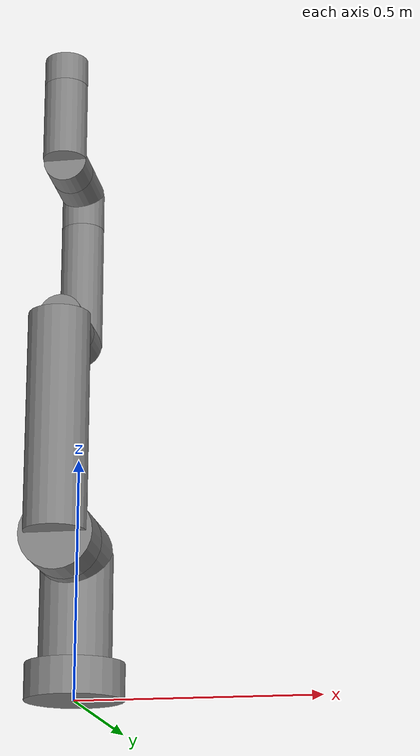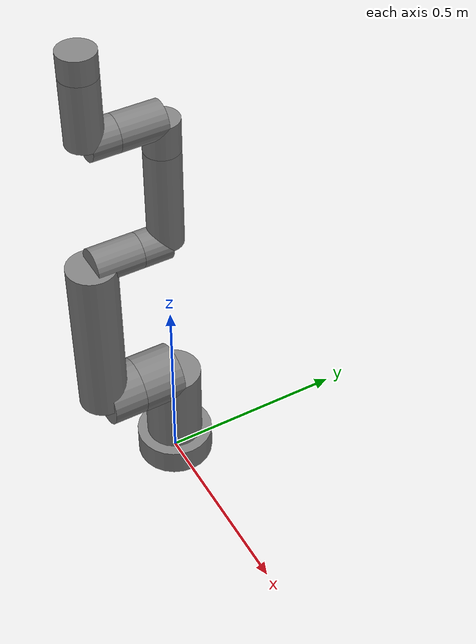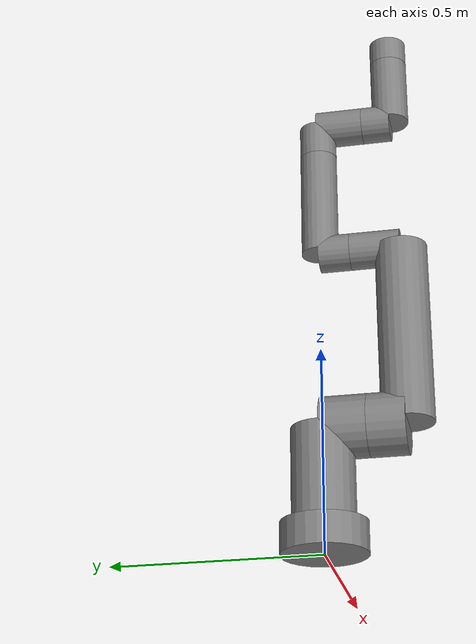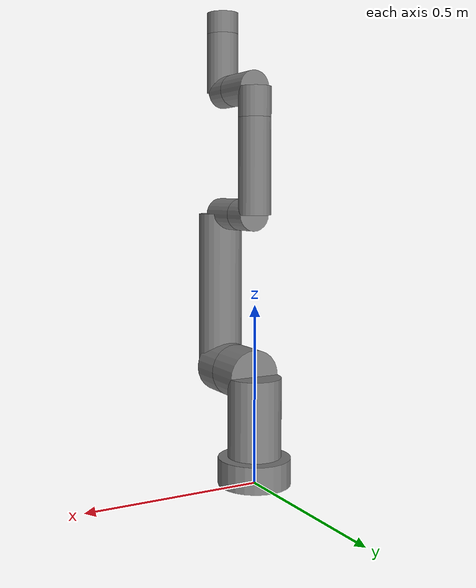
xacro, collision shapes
<?xml version="1.0" ?>
<robot name="indy7" xmlns:xacro="http://ros.org/wiki/xacro">
	<xacro:include filename="$(find indy7_robotis_description)/urdf/indy7.gazebo"/>
	<xacro:property name="PI" value="3.1415926535897931"/>

	<link name="link0">
		<visual>
			<origin xyz="0 0 0" rpy="0 0 0"/>
			<geometry>
				<mesh filename="package://indy7_robotis_description/meshes/stl/Indy7_0.stl"/>
			</geometry>
	<material name="metal_grey">
		<color rgba="0.501960784313725 0.501960784313725 0.501960784313725 1" />
	</material>
		</visual>
		<collision>
			<origin xyz="0 0 0.0375" rpy="0 0 0"/>
			<geometry>
				<cylinder length="0.075" radius="0.102"/>
			</geometry>
		</collision>
		<inertial>
			<origin xyz="0 0 0" rpy="0 0 0"/>
			<mass value="1.59306955"/>
			<inertia ixx="+0.00572623" iyy="+0.00558959" izz="+0.00966674" ixy="+0.00000251" iyz="-0.00000014" ixz="-0.00011380"/>
		</inertial>
	</link>

	<link name="link1">
		<visual>
			<origin xyz="0 0 0" rpy="0 0 0"/>
			<geometry>
				<mesh filename="package://indy7_robotis_description/meshes/stl/Indy7_1.stl"/>
			</geometry>
	<material name="metal_grey">
		<color rgba="0.501960784313725 0.501960784313725 0.501960784313725 1" />
	</material>
		</visual>
		<collision>
			<origin xyz="0 0 0.111" rpy="0 0 0"/>
			<geometry>
				<cylinder length="0.222" radius="0.075"/>
			</geometry>
		</collision>
		<collision>
			<origin xyz="0 -0.0545 0.222" rpy="${PI/2} 0 0"/>
			<geometry>
				<cylinder length="0.109" radius="0.075"/>
			</geometry>
		</collision>
		<inertial>
			<origin xyz="0 0 0" rpy="0 0 0"/>
			<mass value="11.8030102"/>
			<inertia ixx="+0.15418559" iyy="+0.12937017" izz="+0.05964415" ixy="-0.00000235" iyz="-0.04854267" ixz="+0.00001739"/>
		</inertial>
	</link>

	<link name="link2">
		<visual>
			<origin xyz="0 0 0" rpy="0 0 0"/>
			<geometry>
				<mesh filename="package://indy7_robotis_description/meshes/stl/Indy7_2.stl"/>
			</geometry>
	<material name="metal_grey">
		<color rgba="0.501960784313725 0.501960784313725 0.501960784313725 1" />
	</material>
		</visual>
		<collision>
			<origin xyz="-0.225 0 0.09" rpy="${PI/2} 0 -${PI/2}"/>
			<geometry>
				<cylinder length="0.450" radius="0.063"/>
			</geometry>
		</collision>
		<collision>
			<origin xyz="0 0 0.045" rpy="0 0 0"/>
			<geometry>
				<cylinder length="0.09" radius="0.075"/>
			</geometry>
		</collision>
		<collision>
			<origin xyz="-0.45 0 0.02975 " rpy="0 0 0"/>
			<geometry>
				<cylinder length="0.1205" radius="0.045"/>
			</geometry>
		</collision>
		<inertial>
			<origin xyz="0 0 0" rpy="0 0 0"/>
			<mass value="7.99292141"/>
			<inertia ixx="+0.29356980" iyy="+0.28094142" izz="+0.03620609" ixy="-0.00000040" iyz="+0.03727972" ixz="+0.00001441"/>
		</inertial>
	</link>

	<link name="link3">
		<visual>
			<origin xyz="0 0 0" rpy="0 0 0"/>
			<geometry>
				<mesh filename="package://indy7_robotis_description/meshes/stl/Indy7_3.stl"/>
			</geometry>
	<material name="metal_grey">
		<color rgba="0.501960784313725 0.501960784313725 0.501960784313725 1" />
	</material>
		</visual>
		<collision>
			<origin xyz="-0.1335 0 -0.075" rpy="${PI/2} 0 -${PI/2}"/>
			<geometry>
				<cylinder length="0.267" radius="0.045"/>
			</geometry>
		</collision>
		<collision>
			<origin xyz="0 0 -0.0375" rpy="0 0 0"/>
			<geometry>
				<cylinder length="0.075" radius="0.045"/>
			</geometry>
		</collision>
		<inertial>
			<origin xyz="0 0 0" rpy="0 0 0"/>
			<mass value="2.99134127"/>
			<inertia ixx="+0.03424593" iyy="+0.03406024" izz="+0.00450477" ixy="+0.00000149" iyz="+0.00186009" ixz="+0.00000724"/>
		</inertial>
	</link>

	<link name="link4">
		<visual>
			<origin xyz="0 0 0" rpy="0 0 0"/>
			<geometry>
				<mesh filename="package://indy7_robotis_description/meshes/stl/Indy7_4.stl"/>
			</geometry>
	<material name="metal_grey">
		<color rgba="0.501960784313725 0.501960784313725 0.501960784313725 1" />
	</material>
		</visual>
		<collision>
			<origin xyz="0 -0.057 0.083" rpy="${PI/2} 0 0"/>
			<geometry>
				<cylinder length="0.114" radius="0.045"/>
			</geometry>
		</collision>
		<collision>
			<origin xyz="0 -0.057 0.083" rpy="${PI/2} 0 0"/>
			<geometry>
				<cylinder length="0.114" radius="0.045"/>
			</geometry>
		</collision>
		<collision>
			<origin xyz="0 0 0.0415" rpy="0 0 0"/>
			<geometry>
				<cylinder length="0.083" radius="0.045"/>
			</geometry>
		</collision>
		<inertial>
			<origin xyz="0 0 0" rpy="0 0 0"/>
			<mass value="2.12317035"/>
			<inertia ixx="+0.00670405" iyy="+0.00279246" izz="+0.00619341" ixy="+0.00000375" iyz="-0.00127967" ixz="+0.00000150"/>
		</inertial>
	</link>

	<link name="link5">
		<visual>
			<origin xyz="0 0 0" rpy="0 0 0"/>
			<geometry>
				<mesh filename="package://indy7_robotis_description/meshes/stl/Indy7_5.stl"/>
			</geometry>
	<material name="metal_grey">
		<color rgba="0.501960784313725 0.501960784313725 0.501960784313725 1" />
	</material>
		</visual>
		<collision>
			<origin xyz="-0.084 0 0.069" rpy="${PI/2} 0 -${PI/2}"/>
			<geometry>
				<cylinder length="0.168" radius="0.045"/>
			</geometry>
		</collision>
		<collision>
			<origin xyz="-0 0 0.0345" rpy="0 0 0"/>
			<geometry>
				<cylinder length="0.069" radius="0.045"/>
			</geometry>
		</collision>
		<inertial>
			<origin xyz="0 0 0" rpy="0 0 0"/>
			<mass value="2.28865091"/>
			<inertia ixx="+0.00994891" iyy="+0.00978189" izz="+0.00271492" ixy="+0.00000014" iyz="-0.00093546" ixz="+0.00000321"/>
		</inertial>
	</link>

	<link name="link6">
		<visual>
			<origin xyz="0 0 0" rpy="0 0 0"/>
			<geometry>
				<mesh filename="package://indy7_robotis_description/meshes/stl/Indy7_6.stl"/>
			</geometry>
	<material name="metal_grey">
		<color rgba="0.501960784313725 0.501960784313725 0.501960784313725 1" />
	</material>
		</visual>
		<collision>
			<origin xyz="0 0 0.03" rpy="0 0 0"/>
			<geometry>
				<cylinder length="0.06" radius="0.045"/>
			</geometry>
		</collision>
		<inertial>
			<origin xyz="0 0 0" rpy="0 0 0"/>
			<mass value="0.40083918"/>
			<inertia ixx="0.00043534" iyy="0.00044549" izz="0.00059634" ixy="+0.00000013" iyz="+0.00000051" ixz="-0.00000002"/>
		</inertial>
	</link>
	<link name="tcp"/>

	<joint name="joint0" type="revolute">
		<parent link="link0"/>
		<child link="link1"/>
		<origin xyz="0 0 0.0775" rpy="0 0 0"/>
		<axis xyz="0 0 1"/>
		<limit effort="200" velocity="1" lower="-${175*PI/180}" upper="${175*PI/180}"/>
	</joint>

	<joint name="joint1" type="revolute">
		<parent link="link1"/>
		<child link="link2"/>
		<origin xyz="0 -0.10900000 0.22200000" rpy="${PI/2} ${PI/2} 0"/>
		<axis xyz="0 0 1"/>
		<limit effort="200" velocity="1" lower="-${175*PI/180}" upper="${175*PI/180}"/>
	</joint>

	<joint name="joint2" type="revolute">
		<parent link="link2"/>
		<child link="link3"/>
		<origin xyz="-0.45000000 +0.00000000 -0.03050000" rpy="0 0 0"/>
		<axis xyz="0 0 1"/>
		<limit effort="200" velocity="1" lower="-${175*PI/180}" upper="${175*PI/180}"/>
	</joint>

	<joint name="joint3" type="revolute">
		<parent link="link3"/>
		<child link="link4"/>
		<origin xyz="-0.26700000 +0.00000000 -0.07500000" rpy="-${PI/2} 0 ${PI/2}"/>
		<axis xyz="0 0 1"/>
		<limit effort="100" velocity="1" lower="-${175*PI/180}" upper="${175*PI/180}"/>
	</joint>

	<joint name="joint4" type="revolute">
		<parent link="link4"/>
		<child link="link5"/>
		<origin xyz="+0.00000000 -0.11400000 +0.08300000" rpy="${PI/2} ${PI/2} 0"/>
		<axis xyz="0 0 1"/>
		<limit effort="10" velocity="1" lower="-${175*PI/180}" upper="${175*PI/180}"/>
	</joint>

	<joint name="joint5" type="revolute">
		<parent link="link5"/>
		<child link="link6"/>
		<origin xyz="-0.16800000 +0.00000000 +0.06900000" rpy="-${PI/2} 0 ${PI/2}"/>
		<axis xyz="0 0 1"/>
		<limit effort="10" velocity="1" lower="${-PI}" upper="${PI}"/>
	</joint>

	<joint name="tcp" type="fixed">
		<parent link="link6"/>
		<child link="tcp"/>
		<origin xyz="0 0 0.06" rpy="0 0 0"/>
	</joint>

	<transmission name="tran0">
		<type>transmission_interface/SimpleTransmission</type>
		<joint name="joint0">
			<hardwareInterface>hardware_interface/EffortJointInterface</hardwareInterface>
		</joint>
		<actuator name="motor0">
			<hardwareInterface>hardware_interface/EffortJointInterface</hardwareInterface>
			<mechanicalReduction>1</mechanicalReduction>
		</actuator>
	</transmission>

	<transmission name="tran1">
		<type>transmission_interface/SimpleTransmission</type>
		<joint name="joint1">
			<hardwareInterface>hardware_interface/EffortJointInterface</hardwareInterface>
		</joint>
		<actuator name="motor1">
			<hardwareInterface>hardware_interface/EffortJointInterface</hardwareInterface>
			<mechanicalReduction>1</mechanicalReduction>
		</actuator>
	</transmission>

	<transmission name="tran2">
		<type>transmission_interface/SimpleTransmission</type>
		<joint name="joint2">
			<hardwareInterface>hardware_interface/EffortJointInterface</hardwareInterface>
		</joint>
		<actuator name="motor2">
			<hardwareInterface>hardware_interface/EffortJointInterface</hardwareInterface>
			<mechanicalReduction>1</mechanicalReduction>
		</actuator>
	</transmission>

	<transmission name="tran3">
		<type>transmission_interface/SimpleTransmission</type>
		<joint name="joint3">
			<hardwareInterface>hardware_interface/EffortJointInterface</hardwareInterface>
		</joint>
		<actuator name="motor3">
			<hardwareInterface>hardware_interface/EffortJointInterface</hardwareInterface>
			<mechanicalReduction>1</mechanicalReduction>
		</actuator>
	</transmission>

	<transmission name="tran4">
		<type>transmission_interface/SimpleTransmission</type>
		<joint name="joint4">
			<hardwareInterface>hardware_interface/EffortJointInterface</hardwareInterface>
		</joint>
		<actuator name="motor4">
			<hardwareInterface>hardware_interface/EffortJointInterface</hardwareInterface>
			<mechanicalReduction>1</mechanicalReduction>
		</actuator>
	</transmission>

	<transmission name="tran5">
		<type>transmission_interface/SimpleTransmission</type>
		<joint name="joint5">
			<hardwareInterface>hardware_interface/EffortJointInterface</hardwareInterface>
		</joint>
		<actuator name="motor5">
			<hardwareInterface>hardware_interface/EffortJointInterface</hardwareInterface>
			<mechanicalReduction>1</mechanicalReduction>
		</actuator>
	</transmission>

</robot>
